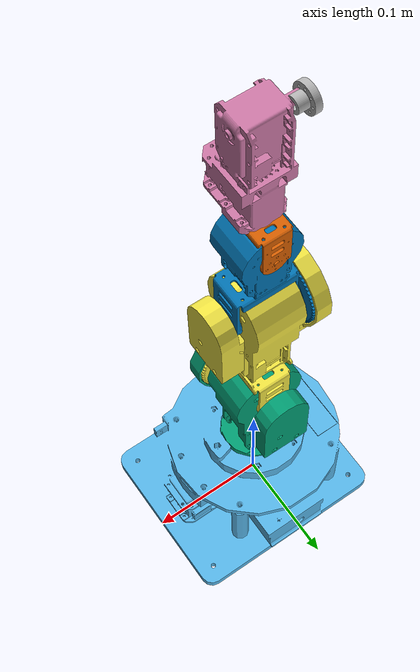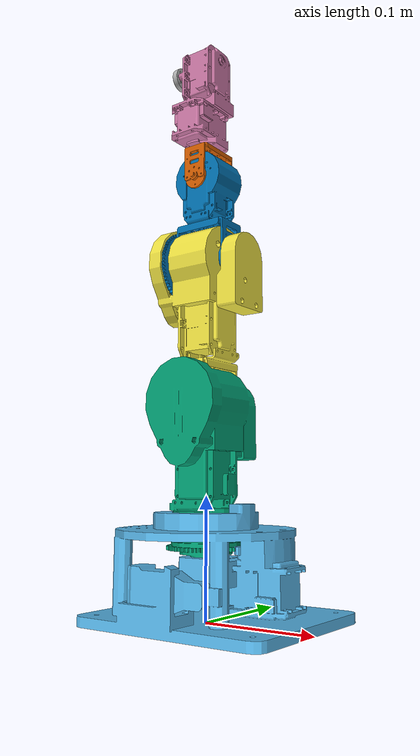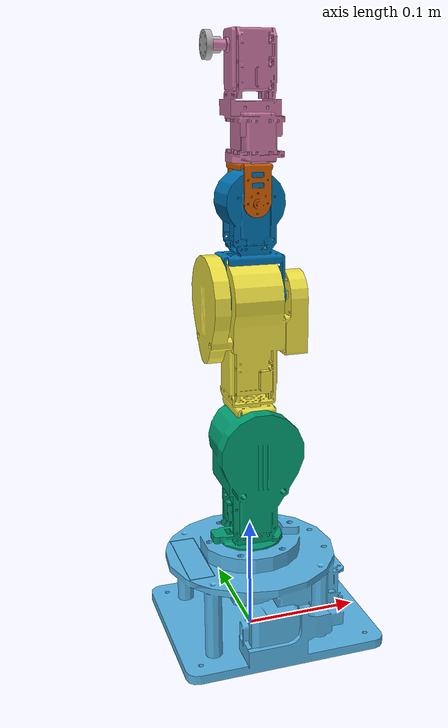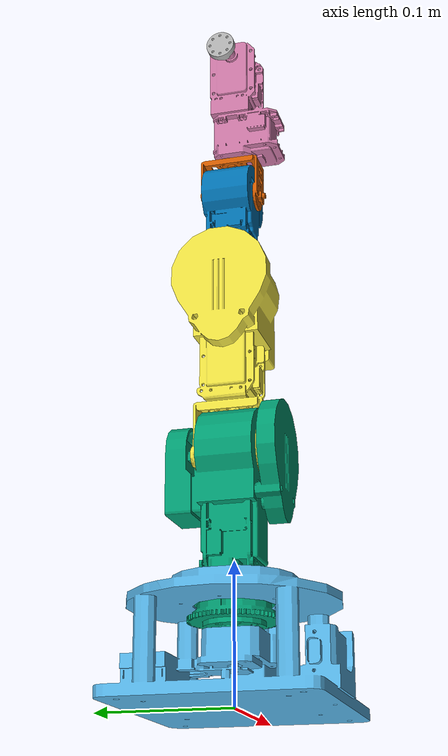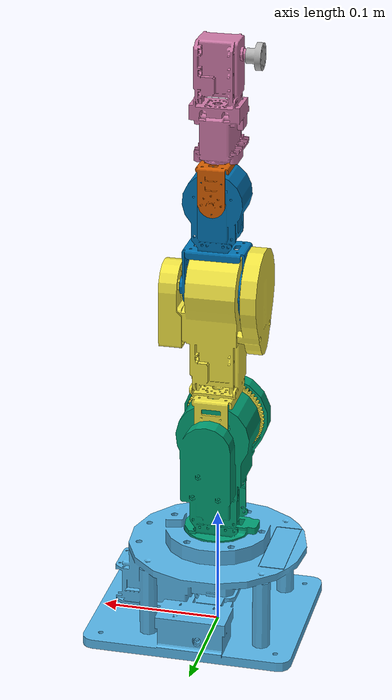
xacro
<?xml version="1.0" ?>

<robot name="cyton" xmlns:xacro="http://www.ros.org/wiki/xacro">

  <!-- Joint 0 -->
  <link name="cyton_base_footprint">
    <visual>
      <origin rpy="0 0 0" xyz="0 0 0"/>
      <geometry>
        <sphere radius="0.001"/>
      </geometry>
      <material name="white">
        <color rgba="1 1 1 1"/>
      </material>
    </visual>
  </link>

  <joint name="cyton_base_joint" type="fixed">
    <parent link="cyton_base_footprint"/>
    <child link="cyton_0_link"/>
    <origin rpy="0 0 0" xyz="0.0 0.0 0.0"/>
  </joint>

  <!-- Link 0 -->
  <link name="cyton_0_link">
    <visual>
      <origin rpy="0 0 0" xyz="0 0 0"/>
      <geometry>
        <mesh filename="package://cyton_description/meshes/cyton_link0.stl"/>
      </geometry>
    </visual>
    <inertial>
      <mass value="100.0"/>
      <origin rpy="0 0 0" xyz="0 0 0"/>
      <inertia ixx="1.1027" iyy="1.1027" izz="1.1027"
                ixy="0" ixz="0" iyz="0"/>
    </inertial>

    <collision>
        <origin xyz="0 0 0" rpy="0 0 0"/>
        <geometry>
            <mesh filename="package://cyton_description/meshes/cyton_link0.stl" />
        </geometry>
    </collision>
  </link>

  <!-- Joint 1 -->
  <joint name="cyton_1_joint" type="revolute">
    <parent link="cyton_0_link"/>
    <child link="cyton_1_link"/>
    <origin rpy="0 0 0" xyz="0 0 0.05315"/>
    <limit effort="100.0" lower="-2.618" upper="2.618" velocity="1.0"/>
    <axis xyz="0 0 -1"/>
  </joint>

  <!-- Link 1 -->
  <link name="cyton_1_link">
    <visual>
      <origin rpy="0.0 0 0.0" xyz="0 0 0"/>
      <geometry>
        <mesh filename="package://cyton_description/meshes/cyton_link1.stl"/>
      </geometry>
    </visual>
    <collision>
      <origin rpy="0.0 0 0.0" xyz="0 0 0"/>
      <geometry>
        <mesh filename="package://cyton_description/meshes/cyton_link1.stl"/>
      </geometry>
    </collision>
    <inertial>
      <mass value="50.0"/>
      <origin rpy="0 0 0" xyz="0 0 0"/>
      <inertia ixx=".1027" iyy=".1027" izz=".1027"
                ixy="0" ixz="0" iyz="0"/>
    </inertial>
  </link>

  <!-- Transmission 1 -->
  <transmission name="tran1">
    <type>transmission_interface/SimpleTransmission</type>
    <joint name="cyton_1_joint">
      <hardwareInterface>PositionJointInterface</hardwareInterface>
    </joint>
    <actuator name="motor1">
      <hardwareInterface>PositionJointInterface</hardwareInterface>
    </actuator>
  </transmission>

  <!-- Joint 2 -->
  <joint name="cyton_2_joint" type="revolute">
    <parent link="cyton_1_link"/>
    <child link="cyton_2_link"/>
    <origin rpy="0 0 0" xyz="0 -0.0205 0.12435"/>
    <limit effort="100.0" lower="-1.5708" upper="1.5708" velocity="1.0"/>
    <axis xyz="0 -1 0"/>
  </joint>

  <!-- Link 2 -->
  <link name="cyton_2_link">
    <visual>
      <origin rpy="0.0 0 0.0" xyz="0 0 0"/>
      <geometry>
        <mesh filename="package://cyton_description/meshes/cyton_link2.stl"/>
      </geometry>
    </visual>
    <collision>
      <origin rpy="0.0 0 0.0" xyz="0 0 0"/>
      <geometry>
        <mesh filename="package://cyton_description/meshes/cyton_link2.stl"/>
      </geometry>
    </collision>
    <inertial>
      <mass value="20.0"/>
      <origin rpy="0 0 0" xyz="0 0 0"/>
      <inertia ixx=".0827" iyy=".0827" izz=".0827"
                ixy="0" ixz="0" iyz="0"/>
    </inertial>
  </link>

  <!-- Transmission 2 -->
  <transmission name="tran2">
    <type>transmission_interface/SimpleTransmission</type>
    <joint name="cyton_2_joint">
      <hardwareInterface>PositionJointInterface</hardwareInterface>
    </joint>
    <actuator name="motor2">
      <hardwareInterface>PositionJointInterface</hardwareInterface>
    </actuator>
  </transmission>

  <!-- Joint 3 -->
  <joint name="cyton_3_joint" type="revolute">
    <parent link="cyton_2_link"/>
    <child link="cyton_3_link"/>
    <origin rpy="0 0 0" xyz="-0.0205 0.0215 0.1255"/>
    <limit effort="100.0" lower="-1.5708" upper="1.5708" velocity="1.0"/>
    <axis xyz="-1 0 0"/>
  </joint>

  <!-- Link 3 -->
  <link name="cyton_3_link">
    <visual>
      <origin rpy="0.0 0 0.0" xyz="0 0 0"/>
      <geometry>
        <mesh filename="package://cyton_description/meshes/cyton_link3.stl"/>
      </geometry>
    </visual>
    <collision>
      <origin rpy="0.0 0 0.0" xyz="0 0 0"/>
      <geometry>
        <mesh filename="package://cyton_description/meshes/cyton_link3.stl"/>
      </geometry>
    </collision>
    <inertial>
      <mass value="10.0"/>
      <origin rpy="0 0 0" xyz="0 0 0"/>
      <inertia ixx=".0627" iyy=".0627" izz=".0627"
                ixy="0" ixz="0" iyz="0"/>
    </inertial>
  </link>

  <!-- Transmission 3 -->
  <transmission name="tran3">
    <type>transmission_interface/SimpleTransmission</type>
    <joint name="cyton_3_joint">
      <hardwareInterface>PositionJointInterface</hardwareInterface>
    </joint>
    <actuator name="motor3">
      <hardwareInterface>PositionJointInterface</hardwareInterface>
    </actuator>
  </transmission>

  <!-- Joint 4 -->
  <joint name="cyton_4_joint" type="revolute">
    <parent link="cyton_3_link"/>
    <child link="cyton_4_link"/>
    <origin rpy="0 0 0" xyz="0.0215 -0.026255 0.0778"/>
    <limit effort="100.0" lower="-1.5708" upper="1.5708" velocity="1.0"/>
    <axis xyz="0 -1 0"/>
  </joint>

  <!-- Link 4 -->
  <link name="cyton_4_link">
    <visual>
      <origin rpy="0.0 0 0.0" xyz="0 0 0"/>
      <geometry>
        <mesh filename="package://cyton_description/meshes/cyton_link4.stl"/>
      </geometry>
    </visual>
    <collision>
      <origin rpy="0.0 0 0.0" xyz="0 0 0"/>
      <geometry>
        <mesh filename="package://cyton_description/meshes/cyton_link4.stl"/>
      </geometry>
    </collision>
    <inertial>
      <mass value="10.0"/>
      <origin rpy="0 0 0" xyz="0 0 0"/>
      <inertia ixx=".0327" iyy=".0327" izz=".0327"
                ixy="0" ixz="0" iyz="0"/>
    </inertial>
  </link>

  <!-- Transmission 4 -->
  <transmission name="tran4">
    <type>transmission_interface/SimpleTransmission</type>
    <joint name="cyton_4_joint">
      <hardwareInterface>PositionJointInterface</hardwareInterface>
    </joint>
    <actuator name="motor4">
      <hardwareInterface>PositionJointInterface</hardwareInterface>
    </actuator>
  </transmission>

  <!-- Joint 5 -->
  <joint name="cyton_5_joint" type="revolute">
    <parent link="cyton_4_link"/>
    <child link="cyton_5_link"/>
    <origin rpy="0 0 0" xyz="0.0 0.026255 0.03"/>
    <limit effort="100.0" lower="-3.1415" upper="3.1415" velocity="1.0"/>
    <axis xyz="0 0 -1"/>
  </joint>

  <!-- Link 5 -->
  <link name="cyton_5_link">
    <visual>
      <origin rpy="0.0 0 0.0" xyz="0 0 0"/>
      <geometry>
        <mesh filename="package://cyton_description/meshes/cyton_link5.stl"/>
      </geometry>
    </visual>
    <collision>
      <origin rpy="0.0 0 0.0" xyz="0 0 0"/>
      <geometry>
        <mesh filename="package://cyton_description/meshes/cyton_link5.stl"/>
      </geometry>
    </collision>
    <inertial>
      <mass value="10.0"/>
      <origin rpy="0 0 0" xyz="0 0 0"/>
      <inertia ixx=".0327" iyy=".0327" izz=".0327"
                ixy="0" ixz="0" iyz="0"/>
    </inertial>
  </link>

  <!-- Transmission 5 -->
  <transmission name="tran5">
    <type>transmission_interface/SimpleTransmission</type>
    <joint name="cyton_5_joint">
      <hardwareInterface>PositionJointInterface</hardwareInterface>
    </joint>
    <actuator name="motor5">
      <hardwareInterface>PositionJointInterface</hardwareInterface>
    </actuator>
  </transmission>

  <!-- Joint 6 -->
  <joint name="cyton_6_joint" type="revolute">
      <parent link="cyton_5_link"/>
      <child link="cyton_6_link"/>
      <origin rpy="0 1.5708 0" xyz="-0.0309 0.0 0.086599"/>
    <limit effort="100.0" lower="-3.1415" upper="3.1415" velocity="1.0"/>
      <axis xyz="0 0 -1"/>
  </joint>

  <!-- Link 6 -->
  <link name="cyton_6_link">
    <visual>
      <origin rpy="0.0 0 0.0" xyz="0 0 0"/>
      <geometry>
        <mesh filename="package://cyton_description/meshes/cyton_link6.stl"/>
      </geometry>
    </visual>
    <collision>
      <origin rpy="0.0 0 0.0" xyz="0 0 0"/>
      <geometry>
        <mesh filename="package://cyton_description/meshes/cyton_link6.stl"/>
      </geometry>
    </collision>
    <inertial>
      <mass value="10.0"/>
      <origin rpy="0 0 0" xyz="0 0 0"/>
      <inertia ixx=".0327" iyy=".0327" izz=".0327"
                ixy="0" ixz="0" iyz="0"/>
    </inertial>
  </link>

  <!-- Transmission 6 -->
  <transmission name="tran6">
    <type>transmission_interface/SimpleTransmission</type>
    <joint name="cyton_6_joint">
      <hardwareInterface>PositionJointInterface</hardwareInterface>
    </joint>
    <actuator name="motor6">
      <hardwareInterface>PositionJointInterface</hardwareInterface>
    </actuator>
  </transmission>

  <gazebo>
    <plugin name="gazebo_ros_control" filename="libgazebo_ros_control.so"/>
  </gazebo>
  <gazebo>
    <plugin name="joint_state_publisher"
            filename="libgazebo_ros_joint_state_publisher.so">
      <jointName>cyton_1_joint, cyton_2_joint, cyton_3_joint, cyton_4_joint, cyton_5_joint, cyton_6_joint </jointName>
    </plugin>
  </gazebo>

</robot>
